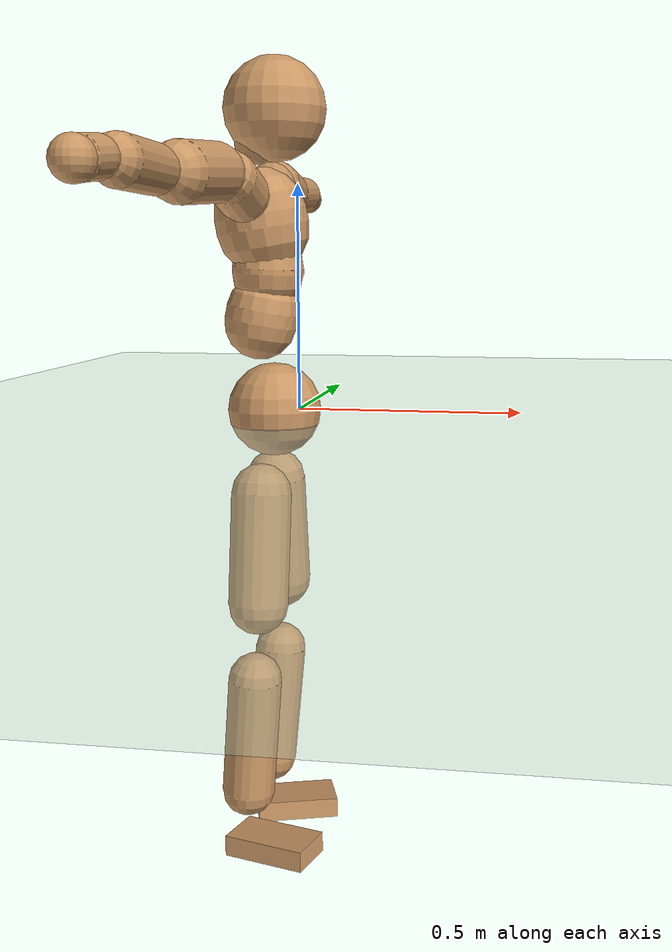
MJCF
<mujoco model="humanoid">
  <compiler coordinate="local"/>
  <default>
    <joint damping="0.0" armature="0.01" stiffness="0.0" limited="true"/>
    <geom conaffinity="1" condim="3" contype="7" margin="0.001" rgba="0.8 0.6 .4 1"/>
  </default>
  <asset>
    <texture type="skybox" builtin="gradient" rgb1=".4 .5 .6" rgb2="0 0 0" width="100" height="100"/>
    <texture builtin="flat" height="1278" mark="cross" markrgb="1 1 1" name="texgeom" random="0.01" rgb1="0.8 0.6 0.4" rgb2="0.8 0.6 0.4" type="cube" width="127"/>
    <texture builtin="checker" height="100" name="texplane" rgb1="0 0 0" rgb2="0.8 0.8 0.8" type="2d" width="100"/>
    <material name="MatPlane" reflectance="0.5" shininess="1" specular="1" texrepeat="60 60" texture="texplane"/>
    <material name="geom" texture="texgeom" texuniform="true"/>
  </asset>
  <worldbody>
    <light cutoff="100" diffuse="1 1 1" dir="-0 0 -1.3" directional="true" exponent="1" pos="0 0 1.3" specular=".1 .1 .1"/>
    <geom conaffinity="1" condim="3" name="floor" pos="0 0 0" rgba="0.8 0.9 0.8 1" size="100 100 .2" type="plane" material="MatPlane"/>
    <body name="Pelvis" pos="-0.0022 -0.2346 0.0301">
      <freejoint name="Pelvis"/>
      <geom type="sphere" contype="1" conaffinity="1" density="500" size="0.0970" pos="0.0000 0.0000 0.0000" name="Pelvis"/>
      <body name="L_Hip" pos="-0.0171 0.0589 -0.0815">
        <joint name="L_Hip_x" type="hinge" pos="0 0 0" axis="1 0 0" stiffness="800" damping="80" armature="0.02" range="-180.0000 180.0000"/>
        <joint name="L_Hip_y" type="hinge" pos="0 0 0" axis="0 1 0" stiffness="800" damping="80" armature="0.02" range="-180.0000 180.0000"/>
        <joint name="L_Hip_z" type="hinge" pos="0 0 0" axis="0 0 1" stiffness="800" damping="80" armature="0.02" range="-180.0000 180.0000"/>
        <geom type="capsule" contype="1" conaffinity="1" density="500" fromto="0.0014 0.0086 -0.0772 0.0056 0.0346 -0.3086" size="0.0626" name="L_Hip"/>
        <body name="L_Knee" pos="0.007 0.0432 -0.3858">
          <joint name="L_Knee_x" type="hinge" pos="0 0 0" axis="1 0 0" stiffness="800" damping="80" armature="0.02" range="-180.0000 180.0000"/>
          <joint name="L_Knee_y" type="hinge" pos="0 0 0" axis="0 1 0" stiffness="800" damping="80" armature="0.02" range="-180.0000 180.0000"/>
          <joint name="L_Knee_z" type="hinge" pos="0 0 0" axis="0 0 1" stiffness="800" damping="80" armature="0.02" range="-180.0000 180.0000"/>
          <geom type="capsule" contype="1" conaffinity="1" density="500" fromto="-0.0075 -0.0030 -0.0853 -0.0302 -0.0118 -0.3412" size="0.0553" name="L_Knee"/>
          <body name="L_Ankle" pos="-0.0377 -0.0148 -0.4265">
            <joint name="L_Ankle_x" type="hinge" pos="0 0 0" axis="1 0 0" stiffness="800" damping="80" armature="0.02" range="-180.0000 180.0000"/>
            <joint name="L_Ankle_y" type="hinge" pos="0 0 0" axis="0 1 0" stiffness="800" damping="80" armature="0.02" range="-180.0000 180.0000"/>
            <joint name="L_Ankle_z" type="hinge" pos="0 0 0" axis="0 0 1" stiffness="800" damping="80" armature="0.02" range="-180.0000 180.0000"/>
            <geom type="box" contype="1" conaffinity="1" density="500" pos="0.0604 0.0201 -0.0299" size="0.0883 0.0514 0.0217" quat="0.9871 0.0000 0.0000 0.1599" name="L_Ankle"/>
            <body name="L_Toe" pos="0.1208 0.0402 -0.0598">
              <joint name="L_Toe_x" type="hinge" pos="0 0 0" axis="1 0 0" stiffness="500" damping="50" armature="0.02" range="-180.0000 180.0000"/>
              <joint name="L_Toe_y" type="hinge" pos="0 0 0" axis="0 1 0" stiffness="500" damping="50" armature="0.02" range="-180.0000 180.0000"/>
              <joint name="L_Toe_z" type="hinge" pos="0 0 0" axis="0 0 1" stiffness="500" damping="50" armature="0.02" range="-180.0000 180.0000"/>
              <geom type="box" contype="1" conaffinity="1" density="500" pos="0.0000 0.0000 0.0288" size="0.0011 0.0025 0.001" quat="0.9863 0.0000 0.0000 0.1647" name="L_Toe"/>
            </body>
          </body>
        </body>
      </body>
      <body name="R_Hip" pos="-0.0127 -0.0609 -0.0898">
        <joint name="R_Hip_x" type="hinge" pos="0 0 0" axis="1 0 0" stiffness="800" damping="80" armature="0.02" range="-180.0000 180.0000"/>
        <joint name="R_Hip_y" type="hinge" pos="0 0 0" axis="0 1 0" stiffness="800" damping="80" armature="0.02" range="-180.0000 180.0000"/>
        <joint name="R_Hip_z" type="hinge" pos="0 0 0" axis="0 0 1" stiffness="800" damping="80" armature="0.02" range="-180.0000 180.0000"/>
        <geom type="capsule" contype="1" conaffinity="1" density="500" fromto="-0.0012 -0.0086 -0.0767 -0.0049 -0.0343 -0.3068" size="0.0621" name="R_Hip"/>
        <body name="R_Knee" pos="-0.0061 -0.0429 -0.3835">
          <joint name="R_Knee_x" type="hinge" pos="0 0 0" axis="1 0 0" stiffness="800" damping="80" armature="0.02" range="-180.0000 180.0000"/>
          <joint name="R_Knee_y" type="hinge" pos="0 0 0" axis="0 1 0" stiffness="800" damping="80" armature="0.02" range="-180.0000 180.0000"/>
          <joint name="R_Knee_z" type="hinge" pos="0 0 0" axis="0 0 1" stiffness="800" damping="80" armature="0.02" range="-180.0000 180.0000"/>
          <geom type="capsule" contype="1" conaffinity="1" density="500" fromto="-0.0069 0.0038 -0.0840 -0.0278 0.0151 -0.3358" size="0.0554" name="R_Knee"/>
          <body name="R_Ankle" pos="-0.0347 0.0189 -0.4198">
            <joint name="R_Ankle_x" type="hinge" pos="0 0 0" axis="1 0 0" stiffness="800" damping="80" armature="0.02" range="-180.0000 180.0000"/>
            <joint name="R_Ankle_y" type="hinge" pos="0 0 0" axis="0 1 0" stiffness="800" damping="80" armature="0.02" range="-180.0000 180.0000"/>
            <joint name="R_Ankle_z" type="hinge" pos="0 0 0" axis="0 0 1" stiffness="800" damping="80" armature="0.02" range="-180.0000 180.0000"/>
            <geom type="box" contype="1" conaffinity="1" density="500" pos="0.0643 -0.0177 -0.0309" size="0.0898 0.0512 0.0219" quat="0.9910 0.0000 0.0000 -0.1337" name="R_Ankle"/>
            <body name="R_Toe" pos="0.1287 -0.0354 -0.0618">
              <joint name="R_Toe_x" type="hinge" pos="0 0 0" axis="1 0 0" stiffness="500" damping="50" armature="0.02" range="-180.0000 180.0000"/>
              <joint name="R_Toe_y" type="hinge" pos="0 0 0" axis="0 1 0" stiffness="500" damping="50" armature="0.02" range="-180.0000 180.0000"/>
              <joint name="R_Toe_z" type="hinge" pos="0 0 0" axis="0 0 1" stiffness="500" damping="50" armature="0.02" range="-180.0000 180.0000"/>
              <geom type="box" contype="1" conaffinity="1" density="500" pos="0.0000 0.0000 0.0306" size="0.0011 0.0025 0.0011" quat="0.9922 0.0000 0.0000 -0.1246" name="R_Toe"/>
            </body>
          </body>
        </body>
      </body>
      <body name="Torso" pos="-0.0395 0.0046 0.1233">
        <joint name="Torso_x" type="hinge" pos="0 0 0" axis="1 0 0" stiffness="1000" damping="100" armature="0.02" range="-180.0000 180.0000"/>
        <joint name="Torso_y" type="hinge" pos="0 0 0" axis="0 1 0" stiffness="1000" damping="100" armature="0.02" range="-180.0000 180.0000"/>
        <joint name="Torso_z" type="hinge" pos="0 0 0" axis="0 0 1" stiffness="1000" damping="100" armature="0.02" range="-180.0000 180.0000"/>
        <geom type="capsule" contype="1" conaffinity="1" density="500" fromto="0.0154 0.0025 0.0809 0.0103 0.0017 0.0539" size="0.074958" name="Torso"/>
        <body name="Spine" pos="0.0257 0.0042 0.1349">
          <joint name="Spine_x" type="hinge" pos="0 0 0" axis="1 0 0" stiffness="1000" damping="100" armature="0.02" range="-180.0000 180.0000"/>
          <joint name="Spine_y" type="hinge" pos="0 0 0" axis="0 1 0" stiffness="1000" damping="100" armature="0.02" range="-180.0000 180.0000"/>
          <joint name="Spine_z" type="hinge" pos="0 0 0" axis="0 0 1" stiffness="1000" damping="100" armature="0.02" range="-180.0000 180.0000"/>
          <geom type="capsule" contype="1" conaffinity="1" density="500" fromto="0.0018 -0.0013 0.0327 0.0012 -0.0009 0.0218" size="0.074214" name="Spine"/>
          <body name="Chest" pos="0.0031 -0.0022 0.0544">
            <joint name="Chest_x" type="hinge" pos="0 0 0" axis="1 0 0" stiffness="1000" damping="100" armature="0.02" range="-180.0000 180.0000"/>
            <joint name="Chest_y" type="hinge" pos="0 0 0" axis="0 1 0" stiffness="1000" damping="100" armature="0.02" range="-180.0000 180.0000"/>
            <joint name="Chest_z" type="hinge" pos="0 0 0" axis="0 0 1" stiffness="1000" damping="100" armature="0.02" range="-180.0000 180.0000"/>
            <geom type="capsule" contype="1" conaffinity="1" density="500" fromto="-0.0145 -0.0049 0.0859 -0.0097 -0.0033 0.0573" size="0.095139" name="Chest"/>
            <body name="Neck" pos="-0.0323 -0.0134 0.2067">
              <joint name="Neck_x" type="hinge" pos="0 0 0" axis="1 0 0" stiffness="500" damping="50" armature="0.02" range="-180.0000 180.0000"/>
              <joint name="Neck_y" type="hinge" pos="0 0 0" axis="0 1 0" stiffness="500" damping="50" armature="0.02" range="-180.0000 180.0000"/>
              <joint name="Neck_z" type="hinge" pos="0 0 0" axis="0 0 1" stiffness="500" damping="50" armature="0.02" range="-180.0000 180.0000"/>
              <geom type="capsule" contype="1" conaffinity="1" density="500" fromto="0.0100 0.0021 0.0172 0.0399 0.0083 0.0689" size="0.042129" name="Neck"/>
              <body name="Head" pos="0.0499 0.0104 0.0861">
                <joint name="Head_x" type="hinge" pos="0 0 0" axis="1 0 0" stiffness="500" damping="50" armature="0.02" range="-180.0000 180.0000"/>
                <joint name="Head_y" type="hinge" pos="0 0 0" axis="0 1 0" stiffness="500" damping="50" armature="0.02" range="-180.0000 180.0000"/>
                <joint name="Head_z" type="hinge" pos="0 0 0" axis="0 0 1" stiffness="500" damping="50" armature="0.02" range="-180.0000 180.0000"/>
                <geom type="sphere" contype="1" conaffinity="1" density="500" size="0.1046" pos="0.0000 0.0000 0.0000" name="Head"/>
              </body>
            </body>
            <body name="L_Thorax" pos="-0.0176 0.0726 0.1122">
              <joint name="L_Thorax_x" type="hinge" pos="0 0 0" axis="1 0 0" stiffness="500" damping="50" armature="0.02" range="-180.0000 180.0000"/>
              <joint name="L_Thorax_y" type="hinge" pos="0 0 0" axis="0 1 0" stiffness="500" damping="50" armature="0.02" range="-180.0000 180.0000"/>
              <joint name="L_Thorax_z" type="hinge" pos="0 0 0" axis="0 0 1" stiffness="500" damping="50" armature="0.02" range="-180.0000 180.0000"/>
              <geom type="capsule" contype="1" conaffinity="1" density="500" fromto="-0.0040 0.0248 0.0091 -0.0161 0.0991 0.0363" size="0.0532" name="L_Thorax"/>
              <body name="L_Shoulder" pos="-0.0201 0.1238 0.0454">
                <joint name="L_Shoulder_x" type="hinge" pos="0 0 0" axis="1 0 0" stiffness="500" damping="50" armature="0.02" range="-720.0000 720.0000"/>
                <joint name="L_Shoulder_y" type="hinge" pos="0 0 0" axis="0 1 0" stiffness="500" damping="50" armature="0.02" range="-720.0000 720.0000"/>
                <joint name="L_Shoulder_z" type="hinge" pos="0 0 0" axis="0 0 1" stiffness="500" damping="50" armature="0.02" range="-720.0000 720.0000"/>
                <geom type="capsule" contype="1" conaffinity="1" density="500" fromto="-0.0048 0.0507 -0.0032 -0.0190 0.2029 -0.0126" size="0.0556" name="L_Shoulder"/>
                <body name="L_Elbow" pos="-0.0238 0.2536 -0.0158">
                  <joint name="L_Elbow_x" type="hinge" pos="0 0 0" axis="1 0 0" stiffness="500" damping="50" armature="0.02" range="-720.0000 720.0000"/>
                  <joint name="L_Elbow_y" type="hinge" pos="0 0 0" axis="0 1 0" stiffness="500" damping="50" armature="0.02" range="-720.0000 720.0000"/>
                  <joint name="L_Elbow_z" type="hinge" pos="0 0 0" axis="0 0 1" stiffness="500" damping="50" armature="0.02" range="-720.0000 720.0000"/>
                  <geom type="capsule" contype="1" conaffinity="1" density="500" fromto="-0.0014 0.0529 0.0026 -0.0057 0.2118 0.0105" size="0.0428" name="L_Elbow"/>
                  <body name="L_Wrist" pos="-0.0072 0.2647 0.0131">
                    <joint name="L_Wrist_x" type="hinge" pos="0 0 0" axis="1 0 0" stiffness="300" damping="30" armature="0.02" range="-180.0000 180.0000"/>
                    <joint name="L_Wrist_y" type="hinge" pos="0 0 0" axis="0 1 0" stiffness="300" damping="30" armature="0.02" range="-180.0000 180.0000"/>
                    <joint name="L_Wrist_z" type="hinge" pos="0 0 0" axis="0 0 1" stiffness="300" damping="30" armature="0.02" range="-180.0000 180.0000"/>
                    <geom type="capsule" contype="1" conaffinity="1" density="500" fromto="-0.0031 0.0172 -0.0021 -0.0124 0.0686 -0.0085" size="0.0338" name="L_Wrist"/>
                    <body name="L_Hand" pos="-0.0154 0.0858 -0.0106">
                      <joint name="L_Hand_x" type="hinge" pos="0 0 0" axis="1 0 0" stiffness="300" damping="30" armature="0.02" range="-180.0000 180.0000"/>
                      <joint name="L_Hand_y" type="hinge" pos="0 0 0" axis="0 1 0" stiffness="300" damping="30" armature="0.02" range="-180.0000 180.0000"/>
                      <joint name="L_Hand_z" type="hinge" pos="0 0 0" axis="0 0 1" stiffness="300" damping="30" armature="0.02" range="-180.0000 180.0000"/>
                      <geom type="sphere" contype="1" conaffinity="1" density="500" size="0.0352" pos="0.0000 0.0000 0.0000" name="L_Hand"/>
                    </body>
                  </body>
                </body>
              </body>
            </body>
            <body name="R_Thorax" pos="-0.0226 -0.0837 0.1107">
              <joint name="R_Thorax_x" type="hinge" pos="0 0 0" axis="1 0 0" stiffness="500" damping="50" armature="0.02" range="-180.0000 180.0000"/>
              <joint name="R_Thorax_y" type="hinge" pos="0 0 0" axis="0 1 0" stiffness="500" damping="50" armature="0.02" range="-180.0000 180.0000"/>
              <joint name="R_Thorax_z" type="hinge" pos="0 0 0" axis="0 0 1" stiffness="500" damping="50" armature="0.02" range="-180.0000 180.0000"/>
              <geom type="capsule" contype="1" conaffinity="1" density="500" fromto="-0.0019 -0.0228 0.0094 -0.0075 -0.0910 0.0377" size="0.0531" name="R_Thorax"/>
              <body name="R_Shoulder" pos="-0.0093 -0.1138 0.0471">
                <joint name="R_Shoulder_x" type="hinge" pos="0 0 0" axis="1 0 0" stiffness="500" damping="50" armature="0.02" range="-720.0000 720.0000"/>
                <joint name="R_Shoulder_y" type="hinge" pos="0 0 0" axis="0 1 0" stiffness="500" damping="50" armature="0.02" range="-720.0000 720.0000"/>
                <joint name="R_Shoulder_z" type="hinge" pos="0 0 0" axis="0 0 1" stiffness="500" damping="50" armature="0.02" range="-720.0000 720.0000"/>
                <geom type="capsule" contype="1" conaffinity="1" density="500" fromto="-0.0064 -0.0518 -0.0028 -0.0258 -0.2070 -0.0112" size="0.0563" name="R_Shoulder"/>
                <body name="R_Elbow" pos="-0.0322 -0.2588 -0.014">
                  <joint name="R_Elbow_x" type="hinge" pos="0 0 0" axis="1 0 0" stiffness="500" damping="50" armature="0.02" range="-720.0000 720.0000"/>
                  <joint name="R_Elbow_y" type="hinge" pos="0 0 0" axis="0 1 0" stiffness="500" damping="50" armature="0.02" range="-720.0000 720.0000"/>
                  <joint name="R_Elbow_z" type="hinge" pos="0 0 0" axis="0 0 1" stiffness="500" damping="50" armature="0.02" range="-720.0000 720.0000"/>
                  <geom type="capsule" contype="1" conaffinity="1" density="500" fromto="-0.0012 -0.0535 0.0013 -0.0048 -0.2141 0.0053" size="0.0434" name="R_Elbow"/>
                  <body name="R_Wrist" pos="-0.006 -0.2676 0.0066">
                    <joint name="R_Wrist_x" type="hinge" pos="0 0 0" axis="1 0 0" stiffness="300" damping="30" armature="0.02" range="-180.0000 180.0000"/>
                    <joint name="R_Wrist_y" type="hinge" pos="0 0 0" axis="0 1 0" stiffness="300" damping="30" armature="0.02" range="-180.0000 180.0000"/>
                    <joint name="R_Wrist_z" type="hinge" pos="0 0 0" axis="0 0 1" stiffness="300" damping="30" armature="0.02" range="-180.0000 180.0000"/>
                    <geom type="capsule" contype="1" conaffinity="1" density="500" fromto="-0.0020 -0.0176 -0.0017 -0.0080 -0.0702 -0.0069" size="0.0345" name="R_Wrist"/>
                    <body name="R_Hand" pos="-0.01 -0.0878 -0.0086">
                      <joint name="R_Hand_x" type="hinge" pos="0 0 0" axis="1 0 0" stiffness="300" damping="30" armature="0.02" range="-180.0000 180.0000"/>
                      <joint name="R_Hand_y" type="hinge" pos="0 0 0" axis="0 1 0" stiffness="300" damping="30" armature="0.02" range="-180.0000 180.0000"/>
                      <joint name="R_Hand_z" type="hinge" pos="0 0 0" axis="0 0 1" stiffness="300" damping="30" armature="0.02" range="-180.0000 180.0000"/>
                      <geom type="sphere" contype="1" conaffinity="1" density="500" size="0.0357" pos="0.0000 0.0000 0.0000" name="R_Hand"/>
                    </body>
                  </body>
                </body>
              </body>
            </body>
          </body>
        </body>
      </body>
    </body>
  </worldbody>
  <actuator>
    <motor name="L_Hip_x" joint="L_Hip_x" gear="500"/>
    <motor name="L_Hip_y" joint="L_Hip_y" gear="500"/>
    <motor name="L_Hip_z" joint="L_Hip_z" gear="500"/>
    <motor name="L_Knee_x" joint="L_Knee_x" gear="500"/>
    <motor name="L_Knee_y" joint="L_Knee_y" gear="500"/>
    <motor name="L_Knee_z" joint="L_Knee_z" gear="500"/>
    <motor name="L_Ankle_x" joint="L_Ankle_x" gear="500"/>
    <motor name="L_Ankle_y" joint="L_Ankle_y" gear="500"/>
    <motor name="L_Ankle_z" joint="L_Ankle_z" gear="500"/>
    <motor name="L_Toe_x" joint="L_Toe_x" gear="500"/>
    <motor name="L_Toe_y" joint="L_Toe_y" gear="500"/>
    <motor name="L_Toe_z" joint="L_Toe_z" gear="500"/>
    <motor name="R_Hip_x" joint="R_Hip_x" gear="500"/>
    <motor name="R_Hip_y" joint="R_Hip_y" gear="500"/>
    <motor name="R_Hip_z" joint="R_Hip_z" gear="500"/>
    <motor name="R_Knee_x" joint="R_Knee_x" gear="500"/>
    <motor name="R_Knee_y" joint="R_Knee_y" gear="500"/>
    <motor name="R_Knee_z" joint="R_Knee_z" gear="500"/>
    <motor name="R_Ankle_x" joint="R_Ankle_x" gear="500"/>
    <motor name="R_Ankle_y" joint="R_Ankle_y" gear="500"/>
    <motor name="R_Ankle_z" joint="R_Ankle_z" gear="500"/>
    <motor name="R_Toe_x" joint="R_Toe_x" gear="500"/>
    <motor name="R_Toe_y" joint="R_Toe_y" gear="500"/>
    <motor name="R_Toe_z" joint="R_Toe_z" gear="500"/>
    <motor name="Torso_x" joint="Torso_x" gear="500"/>
    <motor name="Torso_y" joint="Torso_y" gear="500"/>
    <motor name="Torso_z" joint="Torso_z" gear="500"/>
    <motor name="Spine_x" joint="Spine_x" gear="500"/>
    <motor name="Spine_y" joint="Spine_y" gear="500"/>
    <motor name="Spine_z" joint="Spine_z" gear="500"/>
    <motor name="Chest_x" joint="Chest_x" gear="500"/>
    <motor name="Chest_y" joint="Chest_y" gear="500"/>
    <motor name="Chest_z" joint="Chest_z" gear="500"/>
    <motor name="Neck_x" joint="Neck_x" gear="500"/>
    <motor name="Neck_y" joint="Neck_y" gear="500"/>
    <motor name="Neck_z" joint="Neck_z" gear="500"/>
    <motor name="Head_x" joint="Head_x" gear="500"/>
    <motor name="Head_y" joint="Head_y" gear="500"/>
    <motor name="Head_z" joint="Head_z" gear="500"/>
    <motor name="L_Thorax_x" joint="L_Thorax_x" gear="500"/>
    <motor name="L_Thorax_y" joint="L_Thorax_y" gear="500"/>
    <motor name="L_Thorax_z" joint="L_Thorax_z" gear="500"/>
    <motor name="L_Shoulder_x" joint="L_Shoulder_x" gear="500"/>
    <motor name="L_Shoulder_y" joint="L_Shoulder_y" gear="500"/>
    <motor name="L_Shoulder_z" joint="L_Shoulder_z" gear="500"/>
    <motor name="L_Elbow_x" joint="L_Elbow_x" gear="500"/>
    <motor name="L_Elbow_y" joint="L_Elbow_y" gear="500"/>
    <motor name="L_Elbow_z" joint="L_Elbow_z" gear="500"/>
    <motor name="L_Wrist_x" joint="L_Wrist_x" gear="500"/>
    <motor name="L_Wrist_y" joint="L_Wrist_y" gear="500"/>
    <motor name="L_Wrist_z" joint="L_Wrist_z" gear="500"/>
    <motor name="L_Hand_x" joint="L_Hand_x" gear="500"/>
    <motor name="L_Hand_y" joint="L_Hand_y" gear="500"/>
    <motor name="L_Hand_z" joint="L_Hand_z" gear="500"/>
    <motor name="R_Thorax_x" joint="R_Thorax_x" gear="500"/>
    <motor name="R_Thorax_y" joint="R_Thorax_y" gear="500"/>
    <motor name="R_Thorax_z" joint="R_Thorax_z" gear="500"/>
    <motor name="R_Shoulder_x" joint="R_Shoulder_x" gear="500"/>
    <motor name="R_Shoulder_y" joint="R_Shoulder_y" gear="500"/>
    <motor name="R_Shoulder_z" joint="R_Shoulder_z" gear="500"/>
    <motor name="R_Elbow_x" joint="R_Elbow_x" gear="500"/>
    <motor name="R_Elbow_y" joint="R_Elbow_y" gear="500"/>
    <motor name="R_Elbow_z" joint="R_Elbow_z" gear="500"/>
    <motor name="R_Wrist_x" joint="R_Wrist_x" gear="500"/>
    <motor name="R_Wrist_y" joint="R_Wrist_y" gear="500"/>
    <motor name="R_Wrist_z" joint="R_Wrist_z" gear="500"/>
    <motor name="R_Hand_x" joint="R_Hand_x" gear="500"/>
    <motor name="R_Hand_y" joint="R_Hand_y" gear="500"/>
    <motor name="R_Hand_z" joint="R_Hand_z" gear="500"/>
  </actuator>
  <contact>
    <exclude body1="Torso" body2="Chest"/>
    <exclude body1="Head" body2="Chest"/>
    <exclude body1="R_Knee" body2="R_Toe"/>
    <exclude body1="R_Knee" body2="L_Ankle"/>
    <exclude body1="R_Knee" body2="L_Toe"/>
    <exclude body1="L_Knee" body2="L_Toe"/>
    <exclude body1="L_Knee" body2="R_Ankle"/>
    <exclude body1="L_Knee" body2="R_Toe"/>
    <exclude body1="L_Shoulder" body2="Chest"/>
    <exclude body1="R_Shoulder" body2="Chest"/>
  </contact>
  <sensor/>
  <size njmax="700" nconmax="700"/>
</mujoco>
